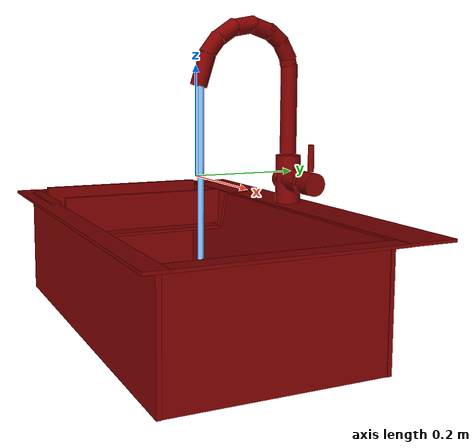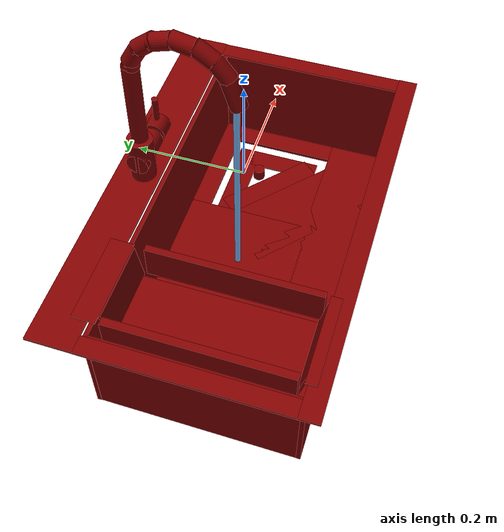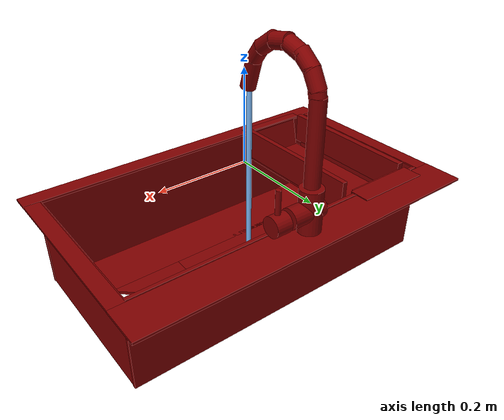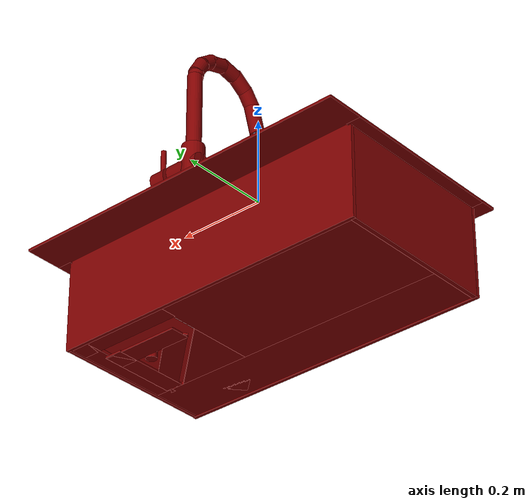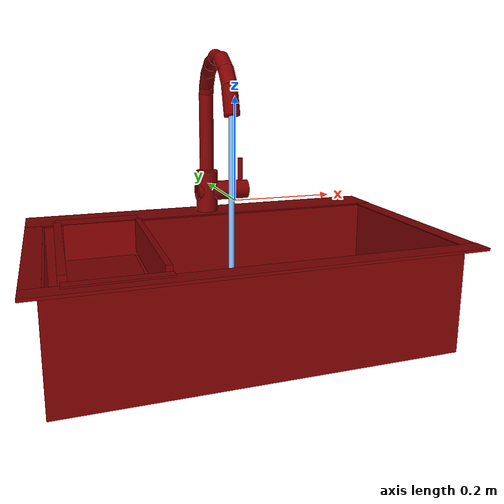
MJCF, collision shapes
<mujoco model="model">
  <compiler angle="radian"/>
  <asset>
    <mesh file="visuals/handle.obj" name="handle_vis"/>
    <mesh file="visuals/Body001.obj" name="Body001_vis"/>
    <mesh file="visuals/Funnel001.obj" name="Funnel001_vis"/>
    <mesh file="visuals/Shelf001.obj" name="Shelf001_vis"/>
    <mesh file="visuals/spout.obj" name="spout_vis"/>
    <texture file="visuals/T_BC001.png" name="Body001_material" type="2d"/>
    <material name="Body001_material" rgba="1 1 1 1.0" texture="Body001_material" shininess="2" specular="2"/>
    <texture file="visuals/T_BC001.png" name="handle_material" type="2d"/>
    <material name="handle_material" rgba="1 1 1 1.0" texture="handle_material" shininess="3" specular="3"/>
    <texture file="visuals/T_BC001.png" name="Funnel001_material" type="2d"/>
    <material name="Funnel001_material" rgba="1 1 1 1.0" texture="Funnel001_material" shininess="3" specular="3"/>
    <texture file="visuals/T_BC001.png" name="Shelf001_material" type="2d"/>
    <material name="Shelf001_material" rgba="1 1 1 1.0" texture="Shelf001_material" shininess="3" specular="3"/>
    <texture file="visuals/T_BC001.png" name="spout_material" type="2d"/>
    <material name="spout_material" rgba="1 1 1 1.0" texture="spout_material" shininess="3" specular="3"/>
  </asset>
  <default>
    <default class="visual">
      <geom conaffinity="0" contype="0" group="1" type="mesh"/>
    </default>
    <default class="collision">
      <geom group="0" rgba="0.5 0 0 0.5"/>
    </default>
    <default class="spawn">
      <geom group="0" rgba="1 1 1 0.5" contype="0" conaffinity="0"/>
      <site group="0" rgba="1 1 1 0.5"/>
    </default>
    <default class="region">
      <geom group="1" conaffinity="0" contype="0" rgba="0 1 0 0"/>
    </default>
  </default>
  <worldbody>
    <body>
      <body name="object">
        <geom mesh="Body001_vis" type="mesh" solimp="0.998 0.998 0.001" solref="0.001 1" density="100" friction="0.95 0.3 0.1" class="visual" material="Body001_material"/>
        <geom class="collision" type="box" pos="0.0006471006781794131 0.2075631469488144 -0.06609410047531128" size="0.3976997137069702 0.042899131774902344 0.0026069965679198503" quat="1.0 0.0 0.0 0.0"/>
        <geom class="collision" type="box" pos="0.0006471006781794131 -0.2304929494857788 -0.06609410047531128" size="0.3976995646953583 0.018816402181982994 0.0026069951709359884" quat="1.0 0.0 0.0 0.0"/>
        <geom class="collision" type="box" pos="-0.3802068829536438 -0.02348211593925953 -0.0665677860379219" size="0.01684270240366459 0.18961864709854126 0.00260699400678277" quat="1.0 0.0 0.0 0.0"/>
        <geom class="collision" type="box" pos="0.3807898759841919 -0.02348211593925953 -0.06669872999191284" size="0.016842689365148544 0.1896185576915741 0.0026069926097989082" quat="1.0 0.0 0.0 0.0"/>
        <geom class="collision" type="box" pos="0.36458319425582886 -0.02943146973848343 -0.16913989186286926" size="0.0031251104082912207 0.18306277692317963 0.10467469692230225" quat="1.0 0.0 0.0 0.0"/>
        <geom class="collision" type="box" pos="-0.36474543809890747 -0.02943146973848343 -0.16913989186286926" size="0.005223751999437809 0.18306270241737366 0.10467465221881866" quat="1.0 0.0 0.0 0.0"/>
        <geom class="collision" type="box" pos="-0.0007008565589785576 -0.2160186469554901 -0.16913989186286926" size="0.3694438338279724 0.00415209773927927 0.10467460751533508" quat="1.0 0.0 0.0 0.0"/>
        <geom class="collision" type="box" pos="-0.0009267780696973205 0.15656650066375732 -0.16913989186286926" size="0.36970946192741394 0.003984060604125261 0.1046745702624321" quat="1.0 0.0 0.0 0.0"/>
        <geom class="collision" type="box" pos="-0.002821854082867503 -0.15344007313251495 -0.26766642928123474" size="0.3630087971687317 0.05785447731614113 0.0037265189457684755" quat="1.0 0.0 0.0 0.0"/>
        <geom class="collision" type="cylinder" pos="-0.003328991588205099 0.19653233885765076 -0.015382376499474049" size="0.023983795195817947 0.04595727100968361" quat="1.0 0.0 0.0 0.0"/>
        <geom class="collision" type="cylinder" pos="0.011081278324127197 0.19653233885765076 -0.016585953533649445" size="0.021613165736198425 0.038016535341739655" quat="0.7071068286895752 -0.0 0.7071067690849304 0.0"/>
        <geom class="collision" type="box" pos="-0.1231742799282074 0.025852620601654053 -0.26766642928123474" size="0.24265508353710175 0.1314408779144287 0.003726513823494315" quat="1.0 0.0 0.0 0.0"/>
        <geom class="collision" type="box" pos="0.23909275233745575 0.13494747877120972 -0.26766642928123474" size="0.1235293447971344 0.022345775738358498 0.0037265124265104532" quat="1.0 0.0 0.0 0.0"/>
        <geom class="collision" type="box" pos="0.3398329019546509 0.025852620601654053 -0.26766642928123474" size="0.020394643768668175 0.13144080340862274 0.003726511262357235" quat="1.0 0.0 0.0 0.0"/>
        <geom class="collision" type="box" pos="0.1526346653699875 -0.06448522210121155 -0.26766642928123474" size="0.06653456389904022 0.13144059479236603 0.0037265042774379253" quat="0.9118109345436096 0.0 0.0 0.4106103777885437"/>
        <body name="handle">
          <joint axis="1.0 0.0 0.0" pos="0.07376234233379364 0.19696025550365448 -0.016715407371520996" limited="true" name="handle_joint_hinge_0" type="hinge" range="-0.7853981633974483 0.7853981633974483" damping="1" frictionloss="1" armature=".01" stiffness="0.05"/>
          <joint axis="0.0 1.0 0.0" pos="0.07376234233379364 0.19696025550365448 -0.016715407371520996" limited="true" name="handle_joint_hinge_1" type="hinge" range="0.0 0.17453292519943295" damping="1" frictionloss="1" armature=".01" stiffness="0.05"/>
          <geom mesh="handle_vis" type="mesh" solimp="0.998 0.998 0.001" solref="0.001 1" density="100" friction="0.95 0.3 0.1" class="visual" material="handle_material"/>
          <geom class="collision" type="cylinder" pos="0.07476835697889328 0.19718551635742188 -0.01680377498269081" size="0.021303895860910416 0.01715010032057762" quat="0.7071068286895752 -0.0 0.7071067690849304 0.0"/>
          <geom class="collision" type="cylinder" pos="0.07654180377721786 0.19691672921180725 0.030811479315161705" size="0.005681407637894154 0.024712152779102325" quat="1.0 0.0 0.0 0.0"/>
        </body>
        <body name="Funnel001">
          <joint axis="0.0 0.0 1.0" pos="0.2199096381664276 0.01696646772325039 -0.2766820192337036" limited="true" name="Funnel001_joint" range="0.0 0.06" type="slide" damping="1" frictionloss="1" armature=".01" stiffness="0.05"/>
          <geom mesh="Funnel001_vis" type="mesh" solimp="0.998 0.998 0.001" solref="0.001 1" density="100" friction="0.95 0.3 0.1" class="visual" material="Funnel001_material"/>
          <geom class="collision" type="box" pos="0.220754474401474 0.010764174163341522 -0.28508588671684265" size="0.02223975956439972 0.10626952350139618 0.0017672061221674085" quat="0.9118109345436096 0.0 0.0 0.4106103777885437"/>
          <geom class="collision" type="box" pos="0.29251566529273987 0.015600811690092087 -0.28512442111968994" size="0.02039463259279728 0.08907151967287064 0.001805734820663929" quat="1.0 0.0 0.0 0.0"/>
          <geom class="collision" type="box" pos="0.22303050756454468 0.07930248975753784 -0.28512442111968994" size="0.08969299495220184 0.02234574593603611 0.0018057329580187798" quat="1.0 0.0 0.0 0.0"/>
          <geom class="collision" type="cylinder" pos="0.24607759714126587 0.04285019636154175 -0.27499282360076904" size="0.01201072707772255 0.01201072707772255" quat="1.0 0.0 0.0 0.0"/>
        </body>
        <body name="Shelf001">
          <joint axis="0.0 0.0 1.0" pos="-0.2547846734523773 -0.01739683374762535 -0.0995471179485321" limited="true" name="Shelf001_joint" range="0.0 0.06" type="slide" damping="1.5" frictionloss="1.5" armature=".01" stiffness="0.05"/>
          <geom mesh="Shelf001_vis" type="mesh" solimp="0.998 0.998 0.001" solref="0.001 1" density="100" friction="0.95 0.3 0.1" class="visual" material="Shelf001_material"/>
          <geom class="collision" type="box" pos="-0.3339877426624298 -0.028172869235277176 -0.08729639649391174" size="0.007228485308587551 0.1687660813331604 0.034994177520275116" quat="1.0 0.0 0.0 0.0"/>
          <geom class="collision" type="box" pos="-0.17308276891708374 -0.036856550723314285 -0.08729639649391174" size="0.005995756946504116 0.16302751004695892 0.034994155168533325" quat="1.0 0.0 0.0 0.0"/>
          <geom class="collision" type="box" pos="-0.2486058920621872 -0.20201639831066132 -0.10036149621009827" size="0.07432298362255096 0.0024261516518890858 0.03369440883398056" quat="0.9940372705459595 0.10904084146022797 0.0 0.0"/>
          <geom class="collision" type="box" pos="-0.2486058920621872 0.14228279888629913 -0.09760116040706635" size="0.07432298362255096 0.0024261516518890858 0.03723553195595741" quat="0.9963814616203308 -0.08499402552843094 -0.0 0.0"/>
          <geom class="collision" type="box" pos="-0.2527177929878235 -0.029702236875891685 -0.1352548450231552" size="0.07255300879478455 0.16592375934123993 0.002932668663561344" quat="1.0 0.0 0.0 0.0"/>
          <geom class="collision" type="box" pos="-0.2524592876434326 0.1715603470802307 -0.061153024435043335" size="0.08537234365940094 0.022228281944990158 0.0009914523689076304" quat="1.0 0.0 0.0 0.0"/>
          <geom class="collision" type="box" pos="-0.2524592876434326 -0.21758738160133362 -0.06154516711831093" size="0.08537230640649796 0.010309886187314987 0.001383596914820373" quat="1.0 0.0 0.0 0.0"/>
        </body>
        <body name="spout">
          <joint axis="0.0 0.0 1.0" pos="-0.0028051920235157013 0.19694867730140686 0.1301451474428177" limited="true" name="spout_joint" range="-0.7853981633974483 0.7853981633974483" type="hinge" damping="1" frictionloss="1" armature=".01" stiffness="0.05"/>
          <site type="cylinder" rgba="0.5 0.75 1 1" size="0.005716228857636452 0.21865792572498322" pos="-0.0035053640604019165 0.011726454831659794 -0.050627950578927994" name="water"/>
          <geom mesh="spout_vis" type="mesh" solimp="0.998 0.998 0.001" solref="0.001 1" density="100" friction="0.95 0.3 0.1" class="visual" material="spout_material"/>
          <geom class="collision" type="cylinder" pos="-0.003646649420261383 0.19577617943286896 0.11842547357082367" size="0.015766173601150513 0.08489116281270981" quat="1.0 0.0 0.0 0.0"/>
          <geom class="collision" type="cylinder" pos="-0.003646649420261383 0.1845373809337616 0.22890529036521912" size="0.015766173601150513 0.020500902086496353" quat="0.9670015573501587 0.254770427942276 0.0 0.0"/>
          <geom class="collision" type="cylinder" pos="-0.003646649420261383 0.16324222087860107 0.2543294429779053" size="0.015766173601150513 0.020500902086496353" quat="0.9004788994789124 0.4348997473716736 0.0 0.0"/>
          <geom class="collision" type="cylinder" pos="-0.003646649420261383 0.19292239844799042 0.20691466331481934" size="0.015766173601150513 0.005798363126814365" quat="0.9954514503479004 0.09527003020048141 0.0 0.0"/>
          <geom class="collision" type="cylinder" pos="-0.003646649420261383 0.13568061590194702 0.267682284116745" size="0.015766173601150513 0.020500902086496353" quat="0.8072229027748108 0.5902467370033264 0.0 0.0"/>
          <geom class="collision" type="cylinder" pos="-0.003646649420261383 0.09968513250350952 0.27220743894577026" size="0.015766173601150513 0.020500902086496353" quat="0.6380579471588135 0.7699883580207825 0.0 0.0"/>
          <geom class="collision" type="cylinder" pos="-0.003646649420261383 0.06410102546215057 0.2606889009475708" size="0.015766173601150513 0.020500902086496353" quat="0.46678173542022705 0.8843725323677063 -2.902466588990982e-17 3.50260498311617e-17"/>
          <geom class="collision" type="cylinder" pos="-0.003646649420261383 0.03509894758462906 0.2349778413772583" size="0.015766173601150513 0.020500902086496353" quat="0.3206758201122284 0.9471890330314636 -5.0641863219958274e-17 6.111298377558944e-17"/>
          <geom class="collision" type="cylinder" pos="-0.003646649420261383 0.01605192944407463 0.19159431755542755" size="0.015766173601150513 0.02976146526634693" quat="0.15284669399261475 0.9882498979568481 -7.266221183695282e-17 8.768649182610048e-17"/>
        </body>
        <geom class="region" name="reg_main" type="box" pos="-7.450580596923828e-09 -4.6938657760620117e-07 -0.17485669255256653" size="0.39518648386001587 0.248191237449646 0.11158903688192368"/>
        <geom class="region" name="reg_basin" type="box" pos="0.0895371288061142 -0.03008502721786499 -0.1642753779888153" size="0.25718308985233307 0.18139925599098206 0.09777408838272095"/>
      </body>
    </body>
  </worldbody>
  <actuator>
    <motor name="handle_joint_hinge_0_actuator" joint="handle_joint_hinge_0" gear="10"/>
    <motor name="handle_joint_hinge_1_actuator" joint="handle_joint_hinge_1" gear="10"/>
    <motor name="Funnel001_joint_actuator" joint="Funnel001_joint" gear="10"/>
    <motor name="Shelf001_joint_actuator" joint="Shelf001_joint" gear="50"/>
    <motor name="spout_joint_actuator" joint="spout_joint" gear="10"/>
  </actuator>
</mujoco>
